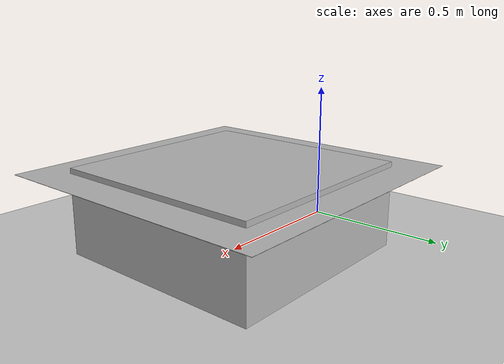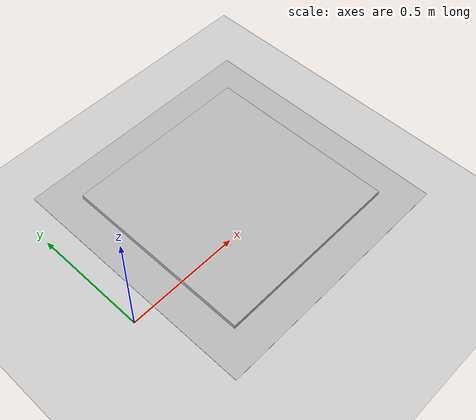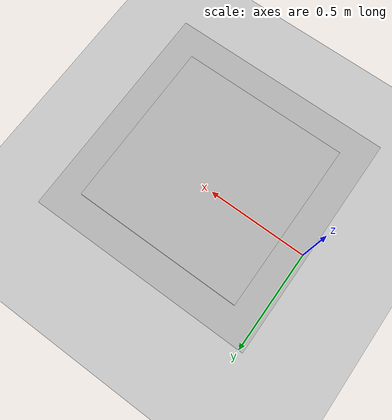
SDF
<?xml version="1.0"?>

<sdf version="1.5">
  <world name="default">

    <!-- A global light source -->
    <include>
      <uri>model://sun</uri>
    </include>

    <!-- A ground plane -->
    <include>
      <uri>model://ground_plane</uri>
      <pose>0 0 0 0 0 0</pose>
    </include>

    <model name='table'>
      <static>1</static>
      <pose>0.5 0 0.15 0 0 0</pose>
      <link name='link'>
        <inertial>
          <mass>1</mass>
          <inertia>
            <ixx>0.166667</ixx>
            <ixy>0</ixy>
            <ixz>0</ixz>
            <iyy>0.166667</iyy>
            <iyz>0</iyz>
            <izz>0.166667</izz>
          </inertia>
          <pose>0 0 0 0 -0 0</pose>
        </inertial>
        <visual name='visual'>
          <geometry>
            <box>
              <size>0.75 0.75 0.3</size>
            </box>
          </geometry>
        </visual>
        <collision name='collision'>
          <geometry>
            <box>
              <size>0.75 0.75 0.3</size>
            </box>
          </geometry>
        </collision>
      </link>
    </model>
    <include>
      <uri>model://chessboard</uri>
      <pose>0.5 0 0.281 0 0 1.5708</pose>
      <static>1</static>
    </include>
  </world>
</sdf>

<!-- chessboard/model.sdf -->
<sdf version="1.4">
   <model name="chessboard">
      <static>true</static>
      <pose>2 -2 0.1 0 0 4.712</pose>
      <link name="link">
         <collision name="collision">
            <geometry>
               <plane>
                  <normal>0 0 1</normal>
                  <size>1 1</size>
               </plane>
            </geometry>
            <surface>
               <friction>
                  <ode>
                     <mu>100</mu>
                     <mu2>50</mu2>
                  </ode>
               </friction>
            </surface>
         </collision>
         <visual name="visual">
            <cast_shadows>false</cast_shadows>
            <geometry>
               <plane>
                  <normal>0 0 1</normal>
                  <size>1 1</size>
               </plane>
            </geometry>
            <material>
               <script>
                  <uri>model://chessboard/materials/scripts</uri>
                  <uri>model://chessboard/materials/textures/</uri>
                  <name>qrcode/Image</name>
               </script>
            </material>
         </visual>
      </link>
   </model>
</sdf>
